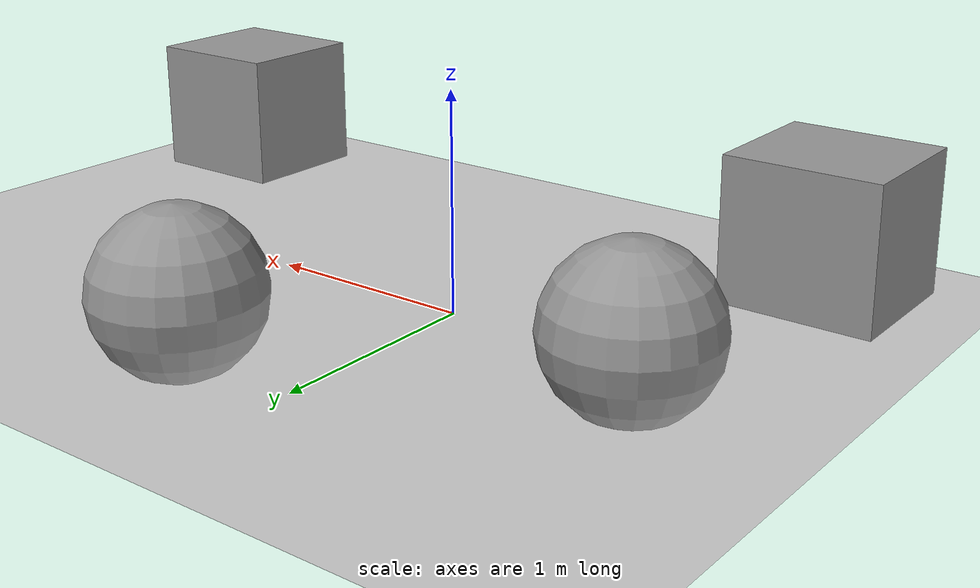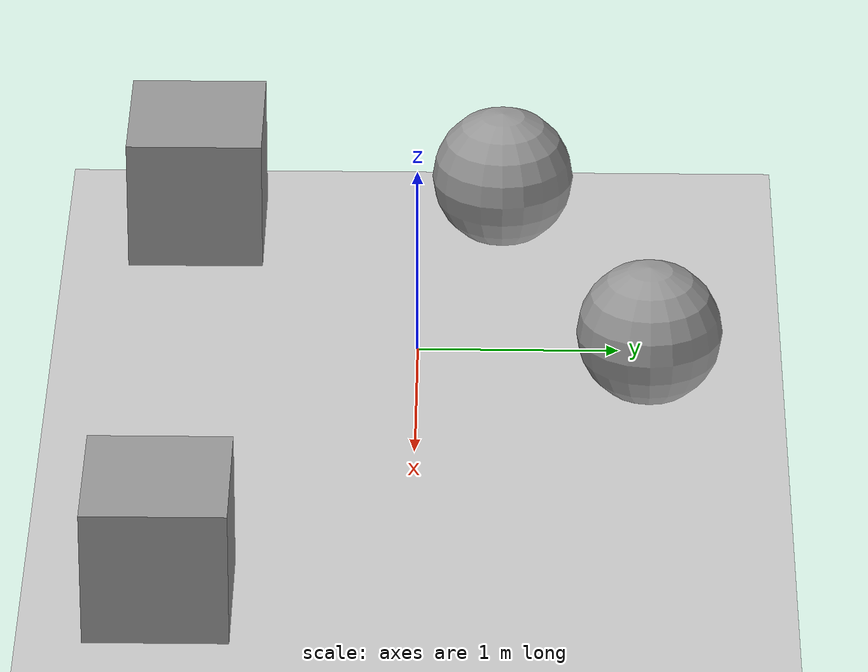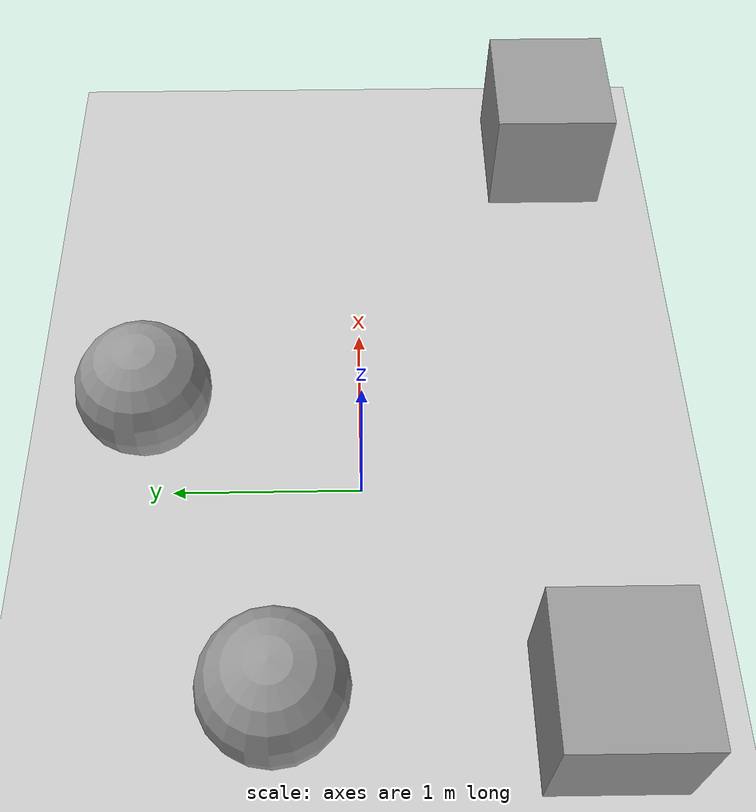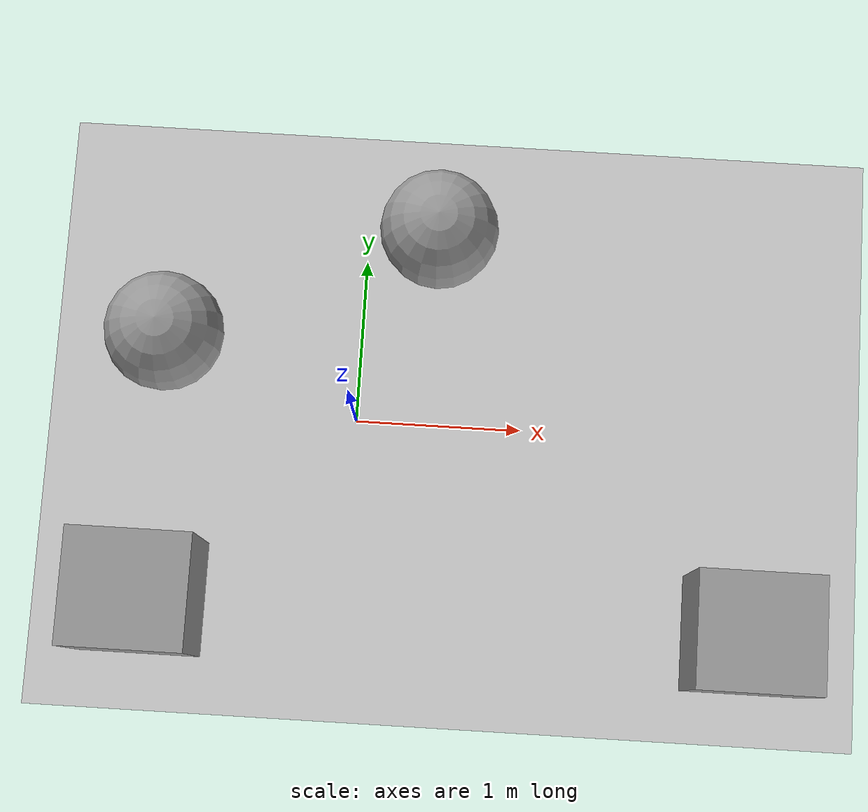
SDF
<sdf version="1.7">
 <world name="default">
  <light name="sun" type="directional">
   <pose>0 0 10 0 -0 0</pose>
   <diffuse>0.8 0.8 0.8 1</diffuse>
   <specular>0.2 0.2 0.2 1</specular>
   <attenuation>
    <range>1000</range>
    <constant>0.9</constant>
    <linear>0.01</linear>
    <quadratic>0.001</quadratic>
   </attenuation>
   <direction>-0.5 0.1 -0.9</direction>
   <spot><inner_angle>0</inner_angle><outer_angle>0</outer_angle><falloff>0</falloff></spot>
  </light>
  <model name="ground_plane">
   <static>1</static>
   <link name="link">
    <collision name="collision">
     <geometry><plane><normal>0 0 1</normal><size>100 100</size></plane></geometry>
     <surface><friction><ode><mu>100</mu><mu2>50</mu2></ode></friction></surface>
    </collision>
    <visual name="visual">
     <cast_shadows>0</cast_shadows>
     <geometry><plane><normal>0 0 1</normal><size>100 100</size></plane></geometry>
     <material>
      <script><uri>file://media/materials/scripts/gazebo.material</uri><name>Gazebo/Grey</name></script>
     </material>
    </visual>
   </link>
  </model>
  <gravity>0 0 -9.8</gravity>
  <magnetic_field>6e-06 2.3e-05 -4.2e-05</magnetic_field>
  <atmosphere type="adiabatic"/>
  <physics type="ode">
   <max_step_size>0.001</max_step_size>
   <real_time_factor>1</real_time_factor>
   <real_time_update_rate>1000</real_time_update_rate>
  </physics>
  <scene><ambient>0.4 0.4 0.4 1</ambient><background>0.7 0.7 0.7 1</background><shadows>1</shadows></scene>
  <audio><device>default</device></audio>
  <spherical_coordinates>
   <surface_model>EARTH_WGS84</surface_model>
   <latitude_deg>0</latitude_deg>
   <longitude_deg>0</longitude_deg>
   <elevation>0</elevation>
   <heading_deg>0</heading_deg>
  </spherical_coordinates>
  <model name="unit_box">
   <pose>-1.20808 -1.14603 0.340683 0 -0 0</pose>
   <link name="link">
    <inertial>
     <mass>1</mass>
     <inertia>
      <ixx>0.166667</ixx>
      <ixy>0</ixy>
      <ixz>0</ixz>
      <iyy>0.166667</iyy>
      <iyz>0</iyz>
      <izz>0.166667</izz>
     </inertia>
    </inertial>
    <collision name="collision">
     <geometry><box><size>0.731617 0.683786 0.681365</size></box></geometry>
    </collision>
    <visual name="visual">
     <geometry><box><size>0.731617 0.683786 0.681365</size></box></geometry>
     <material>
      <script><name>Gazebo/Grey</name><uri>file://media/materials/scripts/gazebo.material</uri></script>
     </material>
    </visual>
   </link>
  </model>
  <model name="unit_sphere">
   <pose>0.438954 1.14138 0.358198 0 -0 0</pose>
   <link name="link">
    <inertial>
     <mass>1</mass>
     <inertia><ixx>0.1</ixx><ixy>0</ixy><ixz>0</ixz><iyy>0.1</iyy><iyz>0</iyz><izz>0.1</izz></inertia>
    </inertial>
    <collision name="collision"><geometry><sphere><radius>0.358198</radius></sphere></geometry></collision>
    <visual name="visual">
     <geometry><sphere><radius>0.358198</radius></sphere></geometry>
     <material>
      <script><name>Gazebo/Grey</name><uri>file://media/materials/scripts/gazebo.material</uri></script>
     </material>
    </visual>
   </link>
  </model>
  <model name="unit_box_clone">
   <pose>2.39641 -1.17236 0.340683 0 -0 0</pose>
   <link name="link">
    <inertial>
     <mass>1</mass>
     <inertia>
      <ixx>0.166667</ixx>
      <ixy>0</ixy>
      <ixz>0</ixz>
      <iyy>0.166667</iyy>
      <iyz>0</iyz>
      <izz>0.166667</izz>
     </inertia>
    </inertial>
    <collision name="collision">
     <geometry><box><size>0.731617 0.683786 0.681366</size></box></geometry>
    </collision>
    <visual name="visual">
     <geometry><box><size>0.731617 0.683786 0.681366</size></box></geometry>
     <material>
      <script><name>Gazebo/Grey</name><uri>file://media/materials/scripts/gazebo.material</uri></script>
     </material>
    </visual>
   </link>
  </model>
  <model name="unit_sphere_clone">
   <pose>-1.16473 0.416424 0.358198 0 -0 0</pose>
   <link name="link">
    <inertial>
     <mass>1</mass>
     <inertia><ixx>0.1</ixx><ixy>0</ixy><ixz>0</ixz><iyy>0.1</iyy><iyz>0</iyz><izz>0.1</izz></inertia>
    </inertial>
    <collision name="collision"><geometry><sphere><radius>0.358198</radius></sphere></geometry></collision>
    <visual name="visual">
     <geometry><sphere><radius>0.358198</radius></sphere></geometry>
     <material>
      <script><name>Gazebo/Grey</name><uri>file://media/materials/scripts/gazebo.material</uri></script>
     </material>
    </visual>
   </link>
  </model>
 </world>
</sdf>
